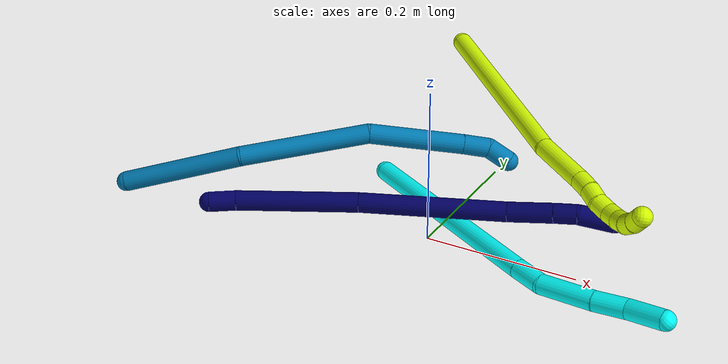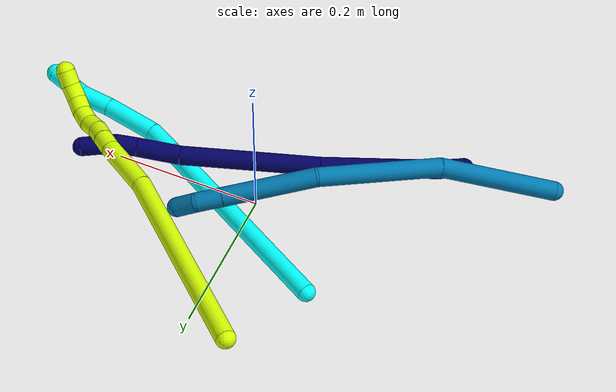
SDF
<sdf version="1.7">
 <world name="default">
  <model name="photoneo_s_sensor">
   <static>1</static>
   <pose>0 0 2 1.57079 1.57079 3.14159</pose>
   <link name="link">
    <inertial><mass>0.1</mass></inertial>
    <sensor name="sensor" type="depth">
     <update_rate>30</update_rate>
     <camera>
      <horizontal_fov>1.22</horizontal_fov>
      <image><width>1920</width><height>1200</height><format>B8G8R8</format></image>
      <clip><near>0.1</near><far>4</far></clip>
      <depth_camera><output>points</output></depth_camera>
     </camera>
     <plugin name="camera_plugin" filename="libgazebo_ros_depth_camera.so">
      <baseline>0.2</baseline>
      <alwaysOn>1</alwaysOn>
      <updateRate>0.0</updateRate>
      <cameraName>camera_ir</cameraName>
      <imageTopicName>/camera/color/image_raw</imageTopicName>
      <cameraInfoTopicName>/camera/color/camera_info</cameraInfoTopicName>
      <depthImageTopicName>/camera/depth/image_raw</depthImageTopicName>
      <depthImageCameraInfoTopicName>/camera/depth/camera_info</depthImageCameraInfoTopicName>
      <pointCloudTopicName>/camera/depth/points</pointCloudTopicName>
      <frameName>fr_optical</frameName>
      <pointCloudCutoff>0.1</pointCloudCutoff>
      <pointCloudCutoffMax>2.0</pointCloudCutoffMax>
      <distortionK1>0</distortionK1>
      <distortionK2>0</distortionK2>
      <distortionK3>0</distortionK3>
      <distortionT1>0</distortionT1>
      <distortionT2>0</distortionT2>
      <CxPrime>0</CxPrime>
      <Cx>0</Cx>
      <Cy>0</Cy>
      <focalLength>0</focalLength>
      <hackBaseline>0</hackBaseline>
     </plugin>
    </sensor>
   </link>
  </model>
  <model name="3">
   <static>0</static>
   <link name="3">
    <collision name="collision-cylinder-e_1_1_4">
     <pose>0.083171 -0.101784 0.063979 1.00963 0.605214 0.341657</pose>
     <geometry><cylinder><radius>0.0125</radius><length>0.292374</length></cylinder></geometry>
     <surface>
      <friction><ode><mu>1.16</mu><mu2>1.16</mu2><slip1>0</slip1><slip2>0</slip2></ode></friction>
      <contact><ode><kp>1e+06</kp><kd>1</kd><max_vel>0</max_vel><min_depth>0.001</min_depth></ode></contact>
     </surface>
    </collision>
    <visual name="visual-cylinder-e_1_1_4">
     <pose>0.083171 -0.101784 0.063979 1.00963 0.605214 0.341657</pose>
     <geometry><cylinder><radius>0.0125</radius><length>0.292374</length></cylinder></geometry>
     <material><ambient>0.003922 1 0.996078 1</ambient></material>
    </visual>
    <collision name="collision-cylinder-e_2_4_5">
     <pose>0.177878 -0.218582 0.137069 1.02538 0.581123 0.333512</pose>
     <geometry><cylinder><radius>0.0125</radius><length>0.042025</length></cylinder></geometry>
     <surface>
      <friction><ode><mu>1.16</mu><mu2>1.16</mu2><slip1>0</slip1><slip2>0</slip2></ode></friction>
      <contact><ode><kp>1e+06</kp><kd>1</kd><max_vel>0</max_vel><min_depth>0.001</min_depth></ode></contact>
     </surface>
    </collision>
    <visual name="visual-cylinder-e_2_4_5">
     <pose>0.177878 -0.218582 0.137069 1.02538 0.581123 0.333512</pose>
     <geometry><cylinder><radius>0.0125</radius><length>0.042025</length></cylinder></geometry>
     <material><ambient>0.003922 1 0.996078 1</ambient></material>
    </visual>
    <collision name="collision-cylinder-e_3_5_6">
     <pose>0.198695 -0.262613 0.165845 0.975178 0.258878 0.137835</pose>
     <geometry><cylinder><radius>0.0125</radius><length>0.072521</length></cylinder></geometry>
     <surface>
      <friction><ode><mu>1.16</mu><mu2>1.16</mu2><slip1>0</slip1><slip2>0</slip2></ode></friction>
      <contact><ode><kp>1e+06</kp><kd>1</kd><max_vel>0</max_vel><min_depth>0.001</min_depth></ode></contact>
     </surface>
    </collision>
    <visual name="visual-cylinder-e_3_5_6">
     <pose>0.198695 -0.262613 0.165845 0.975178 0.258878 0.137835</pose>
     <geometry><cylinder><radius>0.0125</radius><length>0.072521</length></cylinder></geometry>
     <material><ambient>0.003922 1 0.996078 1</ambient></material>
    </visual>
    <collision name="collision-cylinder-e_4_6_7">
     <pose>0.211524 -0.308829 0.197474 0.963043 0.167643 0.08775</pose>
     <geometry><cylinder><radius>0.0125</radius><length>0.0425</length></cylinder></geometry>
     <surface>
      <friction><ode><mu>1.16</mu><mu2>1.16</mu2><slip1>0</slip1><slip2>0</slip2></ode></friction>
      <contact><ode><kp>1e+06</kp><kd>1</kd><max_vel>0</max_vel><min_depth>0.001</min_depth></ode></contact>
     </surface>
    </collision>
    <visual name="visual-cylinder-e_4_6_7">
     <pose>0.211524 -0.308829 0.197474 0.963043 0.167643 0.08775</pose>
     <geometry><cylinder><radius>0.0125</radius><length>0.0425</length></cylinder></geometry>
     <material><ambient>0.003922 1 0.996078 1</ambient></material>
    </visual>
    <collision name="collision-cylinder-e_5_7_2">
     <pose>0.223461 -0.347272 0.220299 1.09817 0.338243 0.208193</pose>
     <geometry><cylinder><radius>0.0125</radius><length>0.05058</length></cylinder></geometry>
     <surface>
      <friction><ode><mu>1.16</mu><mu2>1.16</mu2><slip1>0</slip1><slip2>0</slip2></ode></friction>
      <contact><ode><kp>1e+06</kp><kd>1</kd><max_vel>0</max_vel><min_depth>0.001</min_depth></ode></contact>
     </surface>
    </collision>
    <visual name="visual-cylinder-e_5_7_2">
     <pose>0.223461 -0.347272 0.220299 1.09817 0.338243 0.208193</pose>
     <geometry><cylinder><radius>0.0125</radius><length>0.05058</length></cylinder></geometry>
     <material><ambient>0.003922 1 0.996078 1</ambient></material>
    </visual>
    <collision name="collision-sphere-2">
     <pose>0.231853 -0.368514 0.231159 0 -0 0</pose>
     <geometry><sphere><radius>0.0125</radius></sphere></geometry>
     <surface>
      <friction><ode><mu>1.16</mu><mu2>1.16</mu2><slip1>0</slip1><slip2>0</slip2></ode></friction>
      <contact><ode><kp>1e+06</kp><kd>1</kd><max_vel>0</max_vel><min_depth>0.001</min_depth></ode></contact>
     </surface>
    </collision>
    <visual name="visual-sphere-2">
     <pose>0.231853 -0.368514 0.231159 0 -0 0</pose>
     <geometry><sphere><radius>0.0125</radius></sphere></geometry>
     <material><ambient>0.003922 1 0.996078 1</ambient></material>
    </visual>
    <collision name="collision-sphere-7">
     <pose>0.215069 -0.32603 0.209438 0 -0 0</pose>
     <geometry><sphere><radius>0.0125</radius></sphere></geometry>
     <surface>
      <friction><ode><mu>1.16</mu><mu2>1.16</mu2><slip1>0</slip1><slip2>0</slip2></ode></friction>
      <contact><ode><kp>1e+06</kp><kd>1</kd><max_vel>0</max_vel><min_depth>0.001</min_depth></ode></contact>
     </surface>
    </collision>
    <visual name="visual-sphere-7">
     <pose>0.215069 -0.32603 0.209438 0 -0 0</pose>
     <geometry><sphere><radius>0.0125</radius></sphere></geometry>
     <material><ambient>0.003922 1 0.996078 1</ambient></material>
    </visual>
    <collision name="collision-sphere-6">
     <pose>0.207978 -0.291629 0.18551 0 -0 0</pose>
     <geometry><sphere><radius>0.0125</radius></sphere></geometry>
     <surface>
      <friction><ode><mu>1.16</mu><mu2>1.16</mu2><slip1>0</slip1><slip2>0</slip2></ode></friction>
      <contact><ode><kp>1e+06</kp><kd>1</kd><max_vel>0</max_vel><min_depth>0.001</min_depth></ode></contact>
     </surface>
    </collision>
    <visual name="visual-sphere-6">
     <pose>0.207978 -0.291629 0.18551 0 -0 0</pose>
     <geometry><sphere><radius>0.0125</radius></sphere></geometry>
     <material><ambient>0.003922 1 0.996078 1</ambient></material>
    </visual>
    <collision name="collision-sphere-5">
     <pose>0.189413 -0.233597 0.14618 0 -0 0</pose>
     <geometry><sphere><radius>0.0125</radius></sphere></geometry>
     <surface>
      <friction><ode><mu>1.16</mu><mu2>1.16</mu2><slip1>0</slip1><slip2>0</slip2></ode></friction>
      <contact><ode><kp>1e+06</kp><kd>1</kd><max_vel>0</max_vel><min_depth>0.001</min_depth></ode></contact>
     </surface>
    </collision>
    <visual name="visual-sphere-5">
     <pose>0.189413 -0.233597 0.14618 0 -0 0</pose>
     <geometry><sphere><radius>0.0125</radius></sphere></geometry>
     <material><ambient>0.003922 1 0.996078 1</ambient></material>
    </visual>
    <collision name="collision-sphere-1">
     <geometry><sphere><radius>0.0125</radius></sphere></geometry>
     <surface>
      <friction><ode><mu>1.16</mu><mu2>1.16</mu2><slip1>0</slip1><slip2>0</slip2></ode></friction>
      <contact><ode><kp>1e+06</kp><kd>1</kd><max_vel>0</max_vel><min_depth>0.001</min_depth></ode></contact>
     </surface>
    </collision>
    <visual name="visual-sphere-1">
     <geometry><sphere><radius>0.0125</radius></sphere></geometry>
     <material><ambient>0.003922 1 0.996078 1</ambient></material>
    </visual>
    <collision name="collision-sphere-4">
     <pose>0.166343 -0.203567 0.127957 0 -0 0</pose>
     <geometry><sphere><radius>0.0125</radius></sphere></geometry>
     <surface>
      <friction><ode><mu>1.16</mu><mu2>1.16</mu2><slip1>0</slip1><slip2>0</slip2></ode></friction>
      <contact><ode><kp>1e+06</kp><kd>1</kd><max_vel>0</max_vel><min_depth>0.001</min_depth></ode></contact>
     </surface>
    </collision>
    <visual name="visual-sphere-4">
     <pose>0.166343 -0.203567 0.127957 0 -0 0</pose>
     <geometry><sphere><radius>0.0125</radius></sphere></geometry>
     <material><ambient>0.003922 1 0.996078 1</ambient></material>
    </visual>
    <inertial>
     <pose>0.132989 -0.17736 0.112057 0 -0 0</pose>
     <mass>0.5</mass>
     <inertia>
      <ixx>0.002287</ixx>
      <ixy>0</ixy>
      <ixz>0</ixz>
      <iyy>0.001983</iyy>
      <iyz>0</iyz>
      <izz>0.000316</izz>
     </inertia>
    </inertial>
   </link>
   <pose>-0.120424 0.11098 0.012171 -2.39048 0.270326 -1.43511</pose>
  </model>
  <model name="7">
   <static>0</static>
   <link name="7">
    <collision name="collision-cylinder-e_1_1_4">
     <pose>0.009954 0.001753 -0.01374 -3.01471 0.623115 -2.75209</pose>
     <geometry><cylinder><radius>0.0125</radius><length>0.034115</length></cylinder></geometry>
     <surface>
      <friction><ode><mu>1.16</mu><mu2>1.16</mu2><slip1>0</slip1><slip2>0</slip2></ode></friction>
      <contact><ode><kp>1e+06</kp><kd>1</kd><max_vel>0</max_vel><min_depth>0.001</min_depth></ode></contact>
     </surface>
    </collision>
    <visual name="visual-cylinder-e_1_1_4">
     <pose>0.009954 0.001753 -0.01374 -3.01471 0.623115 -2.75209</pose>
     <geometry><cylinder><radius>0.0125</radius><length>0.034115</length></cylinder></geometry>
     <material><ambient>0.003922 0 0.403922 1</ambient></material>
    </visual>
    <collision name="collision-cylinder-e_2_4_5">
     <pose>0.063163 0.001942 -0.090481 3.11678 0.601514 3.06165</pose>
     <geometry><cylinder><radius>0.0125</radius><length>0.152872</length></cylinder></geometry>
     <surface>
      <friction><ode><mu>1.16</mu><mu2>1.16</mu2><slip1>0</slip1><slip2>0</slip2></ode></friction>
      <contact><ode><kp>1e+06</kp><kd>1</kd><max_vel>0</max_vel><min_depth>0.001</min_depth></ode></contact>
     </surface>
    </collision>
    <visual name="visual-cylinder-e_2_4_5">
     <pose>0.063163 0.001942 -0.090481 3.11678 0.601514 3.06165</pose>
     <geometry><cylinder><radius>0.0125</radius><length>0.152872</length></cylinder></geometry>
     <material><ambient>0.003922 0 0.403922 1</ambient></material>
    </visual>
    <collision name="collision-cylinder-e_3_5_6">
     <pose>0.156289 -0.008341 -0.229239 3.02699 0.579173 2.76122</pose>
     <geometry><cylinder><radius>0.0125</radius><length>0.182236</length></cylinder></geometry>
     <surface>
      <friction><ode><mu>1.16</mu><mu2>1.16</mu2><slip1>0</slip1><slip2>0</slip2></ode></friction>
      <contact><ode><kp>1e+06</kp><kd>1</kd><max_vel>0</max_vel><min_depth>0.001</min_depth></ode></contact>
     </surface>
    </collision>
    <visual name="visual-cylinder-e_3_5_6">
     <pose>0.156289 -0.008341 -0.229239 3.02699 0.579173 2.76122</pose>
     <geometry><cylinder><radius>0.0125</radius><length>0.182236</length></cylinder></geometry>
     <material><ambient>0.003922 0 0.403922 1</ambient></material>
    </visual>
    <collision name="collision-cylinder-e_4_6_7">
     <pose>0.22305 -0.022047 -0.327092 2.91963 0.6407 2.49351</pose>
     <geometry><cylinder><radius>0.0125</radius><length>0.056508</length></cylinder></geometry>
     <surface>
      <friction><ode><mu>1.16</mu><mu2>1.16</mu2><slip1>0</slip1><slip2>0</slip2></ode></friction>
      <contact><ode><kp>1e+06</kp><kd>1</kd><max_vel>0</max_vel><min_depth>0.001</min_depth></ode></contact>
     </surface>
    </collision>
    <visual name="visual-cylinder-e_4_6_7">
     <pose>0.22305 -0.022047 -0.327092 2.91963 0.6407 2.49351</pose>
     <geometry><cylinder><radius>0.0125</radius><length>0.056508</length></cylinder></geometry>
     <material><ambient>0.003922 0 0.403922 1</ambient></material>
    </visual>
    <collision name="collision-cylinder-e_5_7_8">
     <pose>0.248212 -0.029455 -0.360701 2.93427 0.61281 2.50618</pose>
     <geometry><cylinder><radius>0.0125</radius><length>0.028767</length></cylinder></geometry>
     <surface>
      <friction><ode><mu>1.16</mu><mu2>1.16</mu2><slip1>0</slip1><slip2>0</slip2></ode></friction>
      <contact><ode><kp>1e+06</kp><kd>1</kd><max_vel>0</max_vel><min_depth>0.001</min_depth></ode></contact>
     </surface>
    </collision>
    <visual name="visual-cylinder-e_5_7_8">
     <pose>0.248212 -0.029455 -0.360701 2.93427 0.61281 2.50618</pose>
     <geometry><cylinder><radius>0.0125</radius><length>0.028767</length></cylinder></geometry>
     <material><ambient>0.003922 0 0.403922 1</ambient></material>
    </visual>
    <collision name="collision-cylinder-e_6_8_2">
     <pose>0.265002 -0.032545 -0.393302 3.10996 0.383735 2.97908</pose>
     <geometry><cylinder><radius>0.0125</radius><length>0.045503</length></cylinder></geometry>
     <surface>
      <friction><ode><mu>1.16</mu><mu2>1.16</mu2><slip1>0</slip1><slip2>0</slip2></ode></friction>
      <contact><ode><kp>1e+06</kp><kd>1</kd><max_vel>0</max_vel><min_depth>0.001</min_depth></ode></contact>
     </surface>
    </collision>
    <visual name="visual-cylinder-e_6_8_2">
     <pose>0.265002 -0.032545 -0.393302 3.10996 0.383735 2.97908</pose>
     <geometry><cylinder><radius>0.0125</radius><length>0.045503</length></cylinder></geometry>
     <material><ambient>0.003922 0 0.403922 1</ambient></material>
    </visual>
    <collision name="collision-sphere-2">
     <pose>0.27352 -0.033212 -0.414388 0 -0 0</pose>
     <geometry><sphere><radius>0.0125</radius></sphere></geometry>
     <surface>
      <friction><ode><mu>1.16</mu><mu2>1.16</mu2><slip1>0</slip1><slip2>0</slip2></ode></friction>
      <contact><ode><kp>1e+06</kp><kd>1</kd><max_vel>0</max_vel><min_depth>0.001</min_depth></ode></contact>
     </surface>
    </collision>
    <visual name="visual-sphere-2">
     <pose>0.27352 -0.033212 -0.414388 0 -0 0</pose>
     <geometry><sphere><radius>0.0125</radius></sphere></geometry>
     <material><ambient>0.003922 0 0.403922 1</ambient></material>
    </visual>
    <collision name="collision-sphere-4">
     <pose>0.019908 0.003506 -0.027481 0 -0 0</pose>
     <geometry><sphere><radius>0.0125</radius></sphere></geometry>
     <surface>
      <friction><ode><mu>1.16</mu><mu2>1.16</mu2><slip1>0</slip1><slip2>0</slip2></ode></friction>
      <contact><ode><kp>1e+06</kp><kd>1</kd><max_vel>0</max_vel><min_depth>0.001</min_depth></ode></contact>
     </surface>
    </collision>
    <visual name="visual-sphere-4">
     <pose>0.019908 0.003506 -0.027481 0 -0 0</pose>
     <geometry><sphere><radius>0.0125</radius></sphere></geometry>
     <material><ambient>0.003922 0 0.403922 1</ambient></material>
    </visual>
    <collision name="collision-sphere-1">
     <geometry><sphere><radius>0.0125</radius></sphere></geometry>
     <surface>
      <friction><ode><mu>1.16</mu><mu2>1.16</mu2><slip1>0</slip1><slip2>0</slip2></ode></friction>
      <contact><ode><kp>1e+06</kp><kd>1</kd><max_vel>0</max_vel><min_depth>0.001</min_depth></ode></contact>
     </surface>
    </collision>
    <visual name="visual-sphere-1">
     <geometry><sphere><radius>0.0125</radius></sphere></geometry>
     <material><ambient>0.003922 0 0.403922 1</ambient></material>
    </visual>
    <collision name="collision-sphere-8">
     <pose>0.256485 -0.031877 -0.372216 0 -0 0</pose>
     <geometry><sphere><radius>0.0125</radius></sphere></geometry>
     <surface>
      <friction><ode><mu>1.16</mu><mu2>1.16</mu2><slip1>0</slip1><slip2>0</slip2></ode></friction>
      <contact><ode><kp>1e+06</kp><kd>1</kd><max_vel>0</max_vel><min_depth>0.001</min_depth></ode></contact>
     </surface>
    </collision>
    <visual name="visual-sphere-8">
     <pose>0.256485 -0.031877 -0.372216 0 -0 0</pose>
     <geometry><sphere><radius>0.0125</radius></sphere></geometry>
     <material><ambient>0.003922 0 0.403922 1</ambient></material>
    </visual>
    <collision name="collision-sphere-5">
     <pose>0.106417 0.000379 -0.153481 0 -0 0</pose>
     <geometry><sphere><radius>0.0125</radius></sphere></geometry>
     <surface>
      <friction><ode><mu>1.16</mu><mu2>1.16</mu2><slip1>0</slip1><slip2>0</slip2></ode></friction>
      <contact><ode><kp>1e+06</kp><kd>1</kd><max_vel>0</max_vel><min_depth>0.001</min_depth></ode></contact>
     </surface>
    </collision>
    <visual name="visual-sphere-5">
     <pose>0.106417 0.000379 -0.153481 0 -0 0</pose>
     <geometry><sphere><radius>0.0125</radius></sphere></geometry>
     <material><ambient>0.003922 0 0.403922 1</ambient></material>
    </visual>
    <collision name="collision-sphere-6">
     <pose>0.206161 -0.017061 -0.304997 0 -0 0</pose>
     <geometry><sphere><radius>0.0125</radius></sphere></geometry>
     <surface>
      <friction><ode><mu>1.16</mu><mu2>1.16</mu2><slip1>0</slip1><slip2>0</slip2></ode></friction>
      <contact><ode><kp>1e+06</kp><kd>1</kd><max_vel>0</max_vel><min_depth>0.001</min_depth></ode></contact>
     </surface>
    </collision>
    <visual name="visual-sphere-6">
     <pose>0.206161 -0.017061 -0.304997 0 -0 0</pose>
     <geometry><sphere><radius>0.0125</radius></sphere></geometry>
     <material><ambient>0.003922 0 0.403922 1</ambient></material>
    </visual>
    <collision name="collision-sphere-7">
     <pose>0.239939 -0.027033 -0.349187 0 -0 0</pose>
     <geometry><sphere><radius>0.0125</radius></sphere></geometry>
     <surface>
      <friction><ode><mu>1.16</mu><mu2>1.16</mu2><slip1>0</slip1><slip2>0</slip2></ode></friction>
      <contact><ode><kp>1e+06</kp><kd>1</kd><max_vel>0</max_vel><min_depth>0.001</min_depth></ode></contact>
     </surface>
    </collision>
    <visual name="visual-sphere-7">
     <pose>0.239939 -0.027033 -0.349187 0 -0 0</pose>
     <geometry><sphere><radius>0.0125</radius></sphere></geometry>
     <material><ambient>0.003922 0 0.403922 1</ambient></material>
    </visual>
    <inertial>
     <pose>0.140559 -0.009475 -0.205665 0 -0 0</pose>
     <mass>0.5</mass>
     <inertia>
      <ixx>-0.000462</ixx>
      <ixy>0</ixy>
      <ixz>0</ixz>
      <iyy>0.001004</iyy>
      <iyz>0</iyz>
      <izz>-0.000444</izz>
     </inertia>
    </inertial>
   </link>
   <pose>-0.239095 -0.12828 0.05035 -0.250546 -0.985521 0.638565</pose>
  </model>
  <model name="9">
   <static>0</static>
   <link name="9">
    <collision name="collision-cylinder-e_1_1_4">
     <pose>0.032076 -0.002149 -0.070214 3.111 0.42834 3.00115</pose>
     <geometry><cylinder><radius>0.0125</radius><length>0.154447</length></cylinder></geometry>
     <surface>
      <friction><ode><mu>1.16</mu><mu2>1.16</mu2><slip1>0</slip1><slip2>0</slip2></ode></friction>
      <contact><ode><kp>1e+06</kp><kd>1</kd><max_vel>0</max_vel><min_depth>0.001</min_depth></ode></contact>
     </surface>
    </collision>
    <visual name="visual-cylinder-e_1_1_4">
     <pose>0.032076 -0.002149 -0.070214 3.111 0.42834 3.00115</pose>
     <geometry><cylinder><radius>0.0125</radius><length>0.154447</length></cylinder></geometry>
     <material><ambient>0 0.490196 0.709804 1</ambient></material>
    </visual>
    <collision name="collision-cylinder-e_2_4_5">
     <pose>0.077479 -0.012654 -0.220093 3.03708 0.164878 2.01289</pose>
     <geometry><cylinder><radius>0.0125</radius><length>0.162406</length></cylinder></geometry>
     <surface>
      <friction><ode><mu>1.16</mu><mu2>1.16</mu2><slip1>0</slip1><slip2>0</slip2></ode></friction>
      <contact><ode><kp>1e+06</kp><kd>1</kd><max_vel>0</max_vel><min_depth>0.001</min_depth></ode></contact>
     </surface>
    </collision>
    <visual name="visual-cylinder-e_2_4_5">
     <pose>0.077479 -0.012654 -0.220093 3.03708 0.164878 2.01289</pose>
     <geometry><cylinder><radius>0.0125</radius><length>0.162406</length></cylinder></geometry>
     <material><ambient>0 0.490196 0.709804 1</ambient></material>
    </visual>
    <collision name="collision-cylinder-e_3_5_6">
     <pose>0.097622 -0.044119 -0.354626 2.74298 0.113962 0.550479</pose>
     <geometry><cylinder><radius>0.0125</radius><length>0.119849</length></cylinder></geometry>
     <surface>
      <friction><ode><mu>1.16</mu><mu2>1.16</mu2><slip1>0</slip1><slip2>0</slip2></ode></friction>
      <contact><ode><kp>1e+06</kp><kd>1</kd><max_vel>0</max_vel><min_depth>0.001</min_depth></ode></contact>
     </surface>
    </collision>
    <visual name="visual-cylinder-e_3_5_6">
     <pose>0.097622 -0.044119 -0.354626 2.74298 0.113962 0.550479</pose>
     <geometry><cylinder><radius>0.0125</radius><length>0.119849</length></cylinder></geometry>
     <material><ambient>0 0.490196 0.709804 1</ambient></material>
    </visual>
    <collision name="collision-cylinder-e_4_6_7">
     <pose>0.106576 -0.074061 -0.424378 2.71116 0.129947 0.578581</pose>
     <geometry><cylinder><radius>0.0125</radius><length>0.033034</length></cylinder></geometry>
     <surface>
      <friction><ode><mu>1.16</mu><mu2>1.16</mu2><slip1>0</slip1><slip2>0</slip2></ode></friction>
      <contact><ode><kp>1e+06</kp><kd>1</kd><max_vel>0</max_vel><min_depth>0.001</min_depth></ode></contact>
     </surface>
    </collision>
    <visual name="visual-cylinder-e_4_6_7">
     <pose>0.106576 -0.074061 -0.424378 2.71116 0.129947 0.578581</pose>
     <geometry><cylinder><radius>0.0125</radius><length>0.033034</length></cylinder></geometry>
     <material><ambient>0 0.490196 0.709804 1</ambient></material>
    </visual>
    <collision name="collision-cylinder-e_5_7_2">
     <pose>0.111661 -0.092325 -0.44873 2.26259 0.195849 0.411956</pose>
     <geometry><cylinder><radius>0.0125</radius><length>0.030264</length></cylinder></geometry>
     <surface>
      <friction><ode><mu>1.16</mu><mu2>1.16</mu2><slip1>0</slip1><slip2>0</slip2></ode></friction>
      <contact><ode><kp>1e+06</kp><kd>1</kd><max_vel>0</max_vel><min_depth>0.001</min_depth></ode></contact>
     </surface>
    </collision>
    <visual name="visual-cylinder-e_5_7_2">
     <pose>0.111661 -0.092325 -0.44873 2.26259 0.195849 0.411956</pose>
     <geometry><cylinder><radius>0.0125</radius><length>0.030264</length></cylinder></geometry>
     <material><ambient>0 0.490196 0.709804 1</ambient></material>
    </visual>
    <collision name="collision-sphere-2">
     <pose>0.114606 -0.103756 -0.458198 0 -0 0</pose>
     <geometry><sphere><radius>0.0125</radius></sphere></geometry>
     <surface>
      <friction><ode><mu>1.16</mu><mu2>1.16</mu2><slip1>0</slip1><slip2>0</slip2></ode></friction>
      <contact><ode><kp>1e+06</kp><kd>1</kd><max_vel>0</max_vel><min_depth>0.001</min_depth></ode></contact>
     </surface>
    </collision>
    <visual name="visual-sphere-2">
     <pose>0.114606 -0.103756 -0.458198 0 -0 0</pose>
     <geometry><sphere><radius>0.0125</radius></sphere></geometry>
     <material><ambient>0 0.490196 0.709804 1</ambient></material>
    </visual>
    <collision name="collision-sphere-7">
     <pose>0.108717 -0.080895 -0.439262 0 -0 0</pose>
     <geometry><sphere><radius>0.0125</radius></sphere></geometry>
     <surface>
      <friction><ode><mu>1.16</mu><mu2>1.16</mu2><slip1>0</slip1><slip2>0</slip2></ode></friction>
      <contact><ode><kp>1e+06</kp><kd>1</kd><max_vel>0</max_vel><min_depth>0.001</min_depth></ode></contact>
     </surface>
    </collision>
    <visual name="visual-sphere-7">
     <pose>0.108717 -0.080895 -0.439262 0 -0 0</pose>
     <geometry><sphere><radius>0.0125</radius></sphere></geometry>
     <material><ambient>0 0.490196 0.709804 1</ambient></material>
    </visual>
    <collision name="collision-sphere-6">
     <pose>0.104436 -0.067227 -0.409495 0 -0 0</pose>
     <geometry><sphere><radius>0.0125</radius></sphere></geometry>
     <surface>
      <friction><ode><mu>1.16</mu><mu2>1.16</mu2><slip1>0</slip1><slip2>0</slip2></ode></friction>
      <contact><ode><kp>1e+06</kp><kd>1</kd><max_vel>0</max_vel><min_depth>0.001</min_depth></ode></contact>
     </surface>
    </collision>
    <visual name="visual-sphere-6">
     <pose>0.104436 -0.067227 -0.409495 0 -0 0</pose>
     <geometry><sphere><radius>0.0125</radius></sphere></geometry>
     <material><ambient>0 0.490196 0.709804 1</ambient></material>
    </visual>
    <collision name="collision-sphere-5">
     <pose>0.090807 -0.021011 -0.299758 0 -0 0</pose>
     <geometry><sphere><radius>0.0125</radius></sphere></geometry>
     <surface>
      <friction><ode><mu>1.16</mu><mu2>1.16</mu2><slip1>0</slip1><slip2>0</slip2></ode></friction>
      <contact><ode><kp>1e+06</kp><kd>1</kd><max_vel>0</max_vel><min_depth>0.001</min_depth></ode></contact>
     </surface>
    </collision>
    <visual name="visual-sphere-5">
     <pose>0.090807 -0.021011 -0.299758 0 -0 0</pose>
     <geometry><sphere><radius>0.0125</radius></sphere></geometry>
     <material><ambient>0 0.490196 0.709804 1</ambient></material>
    </visual>
    <collision name="collision-sphere-1">
     <geometry><sphere><radius>0.0125</radius></sphere></geometry>
     <surface>
      <friction><ode><mu>1.16</mu><mu2>1.16</mu2><slip1>0</slip1><slip2>0</slip2></ode></friction>
      <contact><ode><kp>1e+06</kp><kd>1</kd><max_vel>0</max_vel><min_depth>0.001</min_depth></ode></contact>
     </surface>
    </collision>
    <visual name="visual-sphere-1">
     <geometry><sphere><radius>0.0125</radius></sphere></geometry>
     <material><ambient>0 0.490196 0.709804 1</ambient></material>
    </visual>
    <collision name="collision-sphere-4">
     <pose>0.064151 -0.004298 -0.140428 0 -0 0</pose>
     <geometry><sphere><radius>0.0125</radius></sphere></geometry>
     <surface>
      <friction><ode><mu>1.16</mu><mu2>1.16</mu2><slip1>0</slip1><slip2>0</slip2></ode></friction>
      <contact><ode><kp>1e+06</kp><kd>1</kd><max_vel>0</max_vel><min_depth>0.001</min_depth></ode></contact>
     </surface>
    </collision>
    <visual name="visual-sphere-4">
     <pose>0.064151 -0.004298 -0.140428 0 -0 0</pose>
     <geometry><sphere><radius>0.0125</radius></sphere></geometry>
     <material><ambient>0 0.490196 0.709804 1</ambient></material>
    </visual>
    <inertial>
     <pose>0.072274 -0.025831 -0.233379 0 -0 0</pose>
     <mass>0.5</mass>
     <inertia>
      <ixx>0.00015</ixx>
      <ixy>0</ixy>
      <ixz>0</ixz>
      <iyy>0.000789</iyy>
      <iyz>0</iyz>
      <izz>-0.000136</izz>
     </inertia>
    </inertial>
   </link>
   <pose>-0.358694 -0.137588 0.052233 1.75461 -0.387021 -0.819255</pose>
  </model>
  <model name="15">
   <static>0</static>
   <link name="15">
    <collision name="collision-cylinder-e_1_1_4">
     <pose>0.094392 -0.086121 0.05181 1.0292 0.754043 0.440503</pose>
     <geometry><cylinder><radius>0.0125</radius><length>0.27576</length></cylinder></geometry>
     <surface>
      <friction><ode><mu>1.16</mu><mu2>1.16</mu2><slip1>0</slip1><slip2>0</slip2></ode></friction>
      <contact><ode><kp>1e+06</kp><kd>1</kd><max_vel>0</max_vel><min_depth>0.001</min_depth></ode></contact>
     </surface>
    </collision>
    <visual name="visual-cylinder-e_1_1_4">
     <pose>0.094392 -0.086121 0.05181 1.0292 0.754043 0.440503</pose>
     <geometry><cylinder><radius>0.0125</radius><length>0.27576</length></cylinder></geometry>
     <material><ambient>0.835294 1 0 1</ambient></material>
    </visual>
    <collision name="collision-cylinder-e_2_4_5">
     <pose>0.213072 -0.195048 0.123956 0.842605 0.671636 0.310319</pose>
     <geometry><cylinder><radius>0.0125</radius><length>0.078065</length></cylinder></geometry>
     <surface>
      <friction><ode><mu>1.16</mu><mu2>1.16</mu2><slip1>0</slip1><slip2>0</slip2></ode></friction>
      <contact><ode><kp>1e+06</kp><kd>1</kd><max_vel>0</max_vel><min_depth>0.001</min_depth></ode></contact>
     </surface>
    </collision>
    <visual name="visual-cylinder-e_2_4_5">
     <pose>0.213072 -0.195048 0.123956 0.842605 0.671636 0.310319</pose>
     <geometry><cylinder><radius>0.0125</radius><length>0.078065</length></cylinder></geometry>
     <material><ambient>0.835294 1 0 1</ambient></material>
    </visual>
    <collision name="collision-cylinder-e_3_5_6">
     <pose>0.245117 -0.224829 0.149691 0.911963 0.721245 0.36578</pose>
     <geometry><cylinder><radius>0.0125</radius><length>0.023494</length></cylinder></geometry>
     <surface>
      <friction><ode><mu>1.16</mu><mu2>1.16</mu2><slip1>0</slip1><slip2>0</slip2></ode></friction>
      <contact><ode><kp>1e+06</kp><kd>1</kd><max_vel>0</max_vel><min_depth>0.001</min_depth></ode></contact>
     </surface>
    </collision>
    <visual name="visual-cylinder-e_3_5_6">
     <pose>0.245117 -0.224829 0.149691 0.911963 0.721245 0.36578</pose>
     <geometry><cylinder><radius>0.0125</radius><length>0.023494</length></cylinder></geometry>
     <material><ambient>0.835294 1 0 1</ambient></material>
    </visual>
    <collision name="collision-cylinder-e_4_6_7">
     <pose>0.261134 -0.23732 0.159492 0.897433 0.863886 0.436813</pose>
     <geometry><cylinder><radius>0.0125</radius><length>0.021726</length></cylinder></geometry>
     <surface>
      <friction><ode><mu>1.16</mu><mu2>1.16</mu2><slip1>0</slip1><slip2>0</slip2></ode></friction>
      <contact><ode><kp>1e+06</kp><kd>1</kd><max_vel>0</max_vel><min_depth>0.001</min_depth></ode></contact>
     </surface>
    </collision>
    <visual name="visual-cylinder-e_4_6_7">
     <pose>0.261134 -0.23732 0.159492 0.897433 0.863886 0.436813</pose>
     <geometry><cylinder><radius>0.0125</radius><length>0.021726</length></cylinder></geometry>
     <material><ambient>0.835294 1 0 1</ambient></material>
    </visual>
    <collision name="collision-cylinder-e_5_7_8">
     <pose>0.275945 -0.247576 0.170187 0.645528 0.693531 0.240559</pose>
     <geometry><cylinder><radius>0.0125</radius><length>0.020497</length></cylinder></geometry>
     <surface>
      <friction><ode><mu>1.16</mu><mu2>1.16</mu2><slip1>0</slip1><slip2>0</slip2></ode></friction>
      <contact><ode><kp>1e+06</kp><kd>1</kd><max_vel>0</max_vel><min_depth>0.001</min_depth></ode></contact>
     </surface>
    </collision>
    <visual name="visual-cylinder-e_5_7_8">
     <pose>0.275945 -0.247576 0.170187 0.645528 0.693531 0.240559</pose>
     <geometry><cylinder><radius>0.0125</radius><length>0.020497</length></cylinder></geometry>
     <material><ambient>0.835294 1 0 1</ambient></material>
    </visual>
    <collision name="collision-cylinder-e_6_8_9">
     <pose>0.28804 -0.259573 0.180924 1.02145 0.577521 0.32987</pose>
     <geometry><cylinder><radius>0.0125</radius><length>0.020308</length></cylinder></geometry>
     <surface>
      <friction><ode><mu>1.16</mu><mu2>1.16</mu2><slip1>0</slip1><slip2>0</slip2></ode></friction>
      <contact><ode><kp>1e+06</kp><kd>1</kd><max_vel>0</max_vel><min_depth>0.001</min_depth></ode></contact>
     </surface>
    </collision>
    <visual name="visual-cylinder-e_6_8_9">
     <pose>0.28804 -0.259573 0.180924 1.02145 0.577521 0.32987</pose>
     <geometry><cylinder><radius>0.0125</radius><length>0.020308</length></cylinder></geometry>
     <material><ambient>0.835294 1 0 1</ambient></material>
    </visual>
    <collision name="collision-cylinder-e_7_9_10">
     <pose>0.29785 -0.275457 0.188314 1.24155 0.437649 0.315408</pose>
     <geometry><cylinder><radius>0.0125</radius><length>0.020135</length></cylinder></geometry>
     <surface>
      <friction><ode><mu>1.16</mu><mu2>1.16</mu2><slip1>0</slip1><slip2>0</slip2></ode></friction>
      <contact><ode><kp>1e+06</kp><kd>1</kd><max_vel>0</max_vel><min_depth>0.001</min_depth></ode></contact>
     </surface>
    </collision>
    <visual name="visual-cylinder-e_7_9_10">
     <pose>0.29785 -0.275457 0.188314 1.24155 0.437649 0.315408</pose>
     <geometry><cylinder><radius>0.0125</radius><length>0.020135</length></cylinder></geometry>
     <material><ambient>0.835294 1 0 1</ambient></material>
    </visual>
    <collision name="collision-cylinder-e_8_10_11">
     <pose>0.30311 -0.293668 0.193969 1.29544 0.099429 0.075256</pose>
     <geometry><cylinder><radius>0.0125</radius><length>0.020014</length></cylinder></geometry>
     <surface>
      <friction><ode><mu>1.16</mu><mu2>1.16</mu2><slip1>0</slip1><slip2>0</slip2></ode></friction>
      <contact><ode><kp>1e+06</kp><kd>1</kd><max_vel>0</max_vel><min_depth>0.001</min_depth></ode></contact>
     </surface>
    </collision>
    <visual name="visual-cylinder-e_8_10_11">
     <pose>0.30311 -0.293668 0.193969 1.29544 0.099429 0.075256</pose>
     <geometry><cylinder><radius>0.0125</radius><length>0.020014</length></cylinder></geometry>
     <material><ambient>0.835294 1 0 1</ambient></material>
    </visual>
    <collision name="collision-cylinder-e_9_11_2">
     <pose>0.30296 -0.313031 0.198426 1.39386 -0.114586 -0.095946</pose>
     <geometry><cylinder><radius>0.0125</radius><length>0.020002</length></cylinder></geometry>
     <surface>
      <friction><ode><mu>1.16</mu><mu2>1.16</mu2><slip1>0</slip1><slip2>0</slip2></ode></friction>
      <contact><ode><kp>1e+06</kp><kd>1</kd><max_vel>0</max_vel><min_depth>0.001</min_depth></ode></contact>
     </surface>
    </collision>
    <visual name="visual-cylinder-e_9_11_2">
     <pose>0.30296 -0.313031 0.198426 1.39386 -0.114586 -0.095946</pose>
     <geometry><cylinder><radius>0.0125</radius><length>0.020002</length></cylinder></geometry>
     <material><ambient>0.835294 1 0 1</ambient></material>
    </visual>
    <collision name="collision-sphere-2">
     <pose>0.301817 -0.322811 0.200174 0 -0 0</pose>
     <geometry><sphere><radius>0.0125</radius></sphere></geometry>
     <surface>
      <friction><ode><mu>1.16</mu><mu2>1.16</mu2><slip1>0</slip1><slip2>0</slip2></ode></friction>
      <contact><ode><kp>1e+06</kp><kd>1</kd><max_vel>0</max_vel><min_depth>0.001</min_depth></ode></contact>
     </surface>
    </collision>
    <visual name="visual-sphere-2">
     <pose>0.301817 -0.322811 0.200174 0 -0 0</pose>
     <geometry><sphere><radius>0.0125</radius></sphere></geometry>
     <material><ambient>0.835294 1 0 1</ambient></material>
    </visual>
    <collision name="collision-sphere-11">
     <pose>0.304103 -0.30325 0.196677 0 -0 0</pose>
     <geometry><sphere><radius>0.0125</radius></sphere></geometry>
     <surface>
      <friction><ode><mu>1.16</mu><mu2>1.16</mu2><slip1>0</slip1><slip2>0</slip2></ode></friction>
      <contact><ode><kp>1e+06</kp><kd>1</kd><max_vel>0</max_vel><min_depth>0.001</min_depth></ode></contact>
     </surface>
    </collision>
    <visual name="visual-sphere-11">
     <pose>0.304103 -0.30325 0.196677 0 -0 0</pose>
     <geometry><sphere><radius>0.0125</radius></sphere></geometry>
     <material><ambient>0.835294 1 0 1</ambient></material>
    </visual>
    <collision name="collision-sphere-10">
     <pose>0.302117 -0.284086 0.191262 0 -0 0</pose>
     <geometry><sphere><radius>0.0125</radius></sphere></geometry>
     <surface>
      <friction><ode><mu>1.16</mu><mu2>1.16</mu2><slip1>0</slip1><slip2>0</slip2></ode></friction>
      <contact><ode><kp>1e+06</kp><kd>1</kd><max_vel>0</max_vel><min_depth>0.001</min_depth></ode></contact>
     </surface>
    </collision>
    <visual name="visual-sphere-10">
     <pose>0.302117 -0.284086 0.191262 0 -0 0</pose>
     <geometry><sphere><radius>0.0125</radius></sphere></geometry>
     <material><ambient>0.835294 1 0 1</ambient></material>
    </visual>
    <collision name="collision-sphere-9">
     <pose>0.293583 -0.266828 0.185366 0 -0 0</pose>
     <geometry><sphere><radius>0.0125</radius></sphere></geometry>
     <surface>
      <friction><ode><mu>1.16</mu><mu2>1.16</mu2><slip1>0</slip1><slip2>0</slip2></ode></friction>
      <contact><ode><kp>1e+06</kp><kd>1</kd><max_vel>0</max_vel><min_depth>0.001</min_depth></ode></contact>
     </surface>
    </collision>
    <visual name="visual-sphere-9">
     <pose>0.293583 -0.266828 0.185366 0 -0 0</pose>
     <geometry><sphere><radius>0.0125</radius></sphere></geometry>
     <material><ambient>0.835294 1 0 1</ambient></material>
    </visual>
    <collision name="collision-sphere-4">
     <pose>0.188783 -0.172242 0.103621 0 -0 0</pose>
     <geometry><sphere><radius>0.0125</radius></sphere></geometry>
     <surface>
      <friction><ode><mu>1.16</mu><mu2>1.16</mu2><slip1>0</slip1><slip2>0</slip2></ode></friction>
      <contact><ode><kp>1e+06</kp><kd>1</kd><max_vel>0</max_vel><min_depth>0.001</min_depth></ode></contact>
     </surface>
    </collision>
    <visual name="visual-sphere-4">
     <pose>0.188783 -0.172242 0.103621 0 -0 0</pose>
     <geometry><sphere><radius>0.0125</radius></sphere></geometry>
     <material><ambient>0.835294 1 0 1</ambient></material>
    </visual>
    <collision name="collision-sphere-1">
     <geometry><sphere><radius>0.0125</radius></sphere></geometry>
     <surface>
      <friction><ode><mu>1.16</mu><mu2>1.16</mu2><slip1>0</slip1><slip2>0</slip2></ode></friction>
      <contact><ode><kp>1e+06</kp><kd>1</kd><max_vel>0</max_vel><min_depth>0.001</min_depth></ode></contact>
     </surface>
    </collision>
    <visual name="visual-sphere-1">
     <geometry><sphere><radius>0.0125</radius></sphere></geometry>
     <material><ambient>0.835294 1 0 1</ambient></material>
    </visual>
    <collision name="collision-sphere-8">
     <pose>0.282497 -0.252318 0.176482 0 -0 0</pose>
     <geometry><sphere><radius>0.0125</radius></sphere></geometry>
     <surface>
      <friction><ode><mu>1.16</mu><mu2>1.16</mu2><slip1>0</slip1><slip2>0</slip2></ode></friction>
      <contact><ode><kp>1e+06</kp><kd>1</kd><max_vel>0</max_vel><min_depth>0.001</min_depth></ode></contact>
     </surface>
    </collision>
    <visual name="visual-sphere-8">
     <pose>0.282497 -0.252318 0.176482 0 -0 0</pose>
     <geometry><sphere><radius>0.0125</radius></sphere></geometry>
     <material><ambient>0.835294 1 0 1</ambient></material>
    </visual>
    <collision name="collision-sphere-5">
     <pose>0.237361 -0.217853 0.144291 0 -0 0</pose>
     <geometry><sphere><radius>0.0125</radius></sphere></geometry>
     <surface>
      <friction><ode><mu>1.16</mu><mu2>1.16</mu2><slip1>0</slip1><slip2>0</slip2></ode></friction>
      <contact><ode><kp>1e+06</kp><kd>1</kd><max_vel>0</max_vel><min_depth>0.001</min_depth></ode></contact>
     </surface>
    </collision>
    <visual name="visual-sphere-5">
     <pose>0.237361 -0.217853 0.144291 0 -0 0</pose>
     <geometry><sphere><radius>0.0125</radius></sphere></geometry>
     <material><ambient>0.835294 1 0 1</ambient></material>
    </visual>
    <collision name="collision-sphere-6">
     <pose>0.252874 -0.231804 0.155092 0 -0 0</pose>
     <geometry><sphere><radius>0.0125</radius></sphere></geometry>
     <surface>
      <friction><ode><mu>1.16</mu><mu2>1.16</mu2><slip1>0</slip1><slip2>0</slip2></ode></friction>
      <contact><ode><kp>1e+06</kp><kd>1</kd><max_vel>0</max_vel><min_depth>0.001</min_depth></ode></contact>
     </surface>
    </collision>
    <visual name="visual-sphere-6">
     <pose>0.252874 -0.231804 0.155092 0 -0 0</pose>
     <geometry><sphere><radius>0.0125</radius></sphere></geometry>
     <material><ambient>0.835294 1 0 1</ambient></material>
    </visual>
    <collision name="collision-sphere-7">
     <pose>0.269394 -0.242835 0.163892 0 -0 0</pose>
     <geometry><sphere><radius>0.0125</radius></sphere></geometry>
     <surface>
      <friction><ode><mu>1.16</mu><mu2>1.16</mu2><slip1>0</slip1><slip2>0</slip2></ode></friction>
      <contact><ode><kp>1e+06</kp><kd>1</kd><max_vel>0</max_vel><min_depth>0.001</min_depth></ode></contact>
     </surface>
    </collision>
    <visual name="visual-sphere-7">
     <pose>0.269394 -0.242835 0.163892 0 -0 0</pose>
     <geometry><sphere><radius>0.0125</radius></sphere></geometry>
     <material><ambient>0.835294 1 0 1</ambient></material>
    </visual>
    <inertial>
     <pose>0.167447 -0.154888 0.099502 0 -0 0</pose>
     <mass>0.5</mass>
     <inertia>
      <ixx>0.001782</ixx>
      <ixy>0</ixy>
      <ixz>0</ixz>
      <iyy>0.001833</iyy>
      <iyz>0</iyz>
      <izz>-8.9e-05</izz>
     </inertia>
    </inertial>
   </link>
   <pose>-0.097425 0.288504 0.136718 -1.79737 0.776775 -1.26557</pose>
  </model>
 </world>
</sdf>
